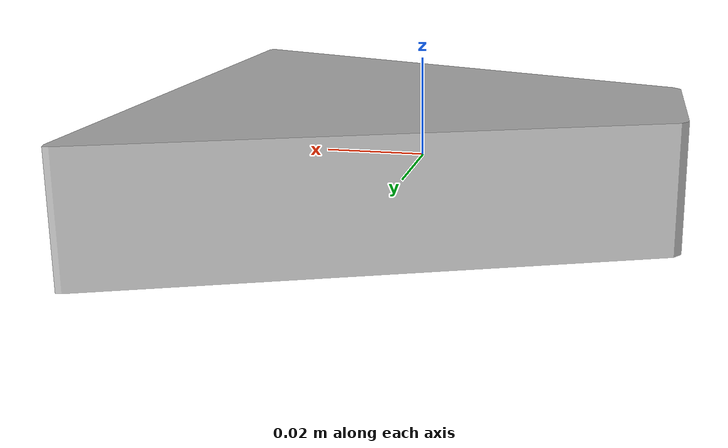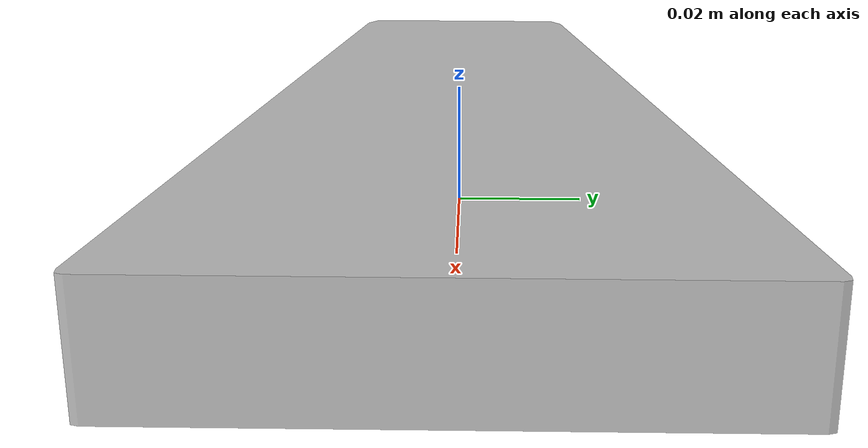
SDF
<?xml version="1.0"?>
<sdf version="1.7">
  <model name="push_a_glyph_controller">
    <link name="c_glyph_base">
      <inertial><pose>0.009030 -0.000000 0 0 0 0</pose><mass>0.102084410</mass>
        <inertia><ixx>6.420933442e-05</ixx><iyy>8.716876295e-05</iyy><izz>1.407443047e-04</izz><ixy>0</ixy><ixz>0</ixz><iyz>0</iyz></inertia></inertial>
      <visual name="hull_visual"><pose>0 0 0 0 0 0</pose>
        <geometry><mesh><uri>icra_glyphs/dynamic/A_prism.obj</uri></mesh></geometry>
      </visual>
      <collision name="hull_collision"><pose>0 0 0 0 0 0</pose>
        <geometry><mesh><uri>icra_glyphs/dynamic/A_prism.obj</uri><drake:declare_convex/></mesh></geometry>
        <surface><friction><ode><mu>0.3</mu><mu2>0.3</mu2></ode></friction></surface>
        <drake:proximity_properties><drake:mu_static>0.3</drake:mu_static><drake:mu_dynamic>0.3</drake:mu_dynamic></drake:proximity_properties>
      </collision>
      <collision name="witness_0"><pose>-0.049568 0.015683 -0.0115 0 0 0</pose>
        <geometry><sphere><radius>0.001</radius></sphere></geometry></collision>
      <collision name="witness_1"><pose>0.049893 -0.054005 -0.0115 0 0 0</pose>
        <geometry><sphere><radius>0.001</radius></sphere></geometry></collision>
      <collision name="witness_2"><pose>0.049893 0.054005 -0.0115 0 0 0</pose>
        <geometry><sphere><radius>0.001</radius></sphere></geometry></collision>
    </link>
  </model>
</sdf>
